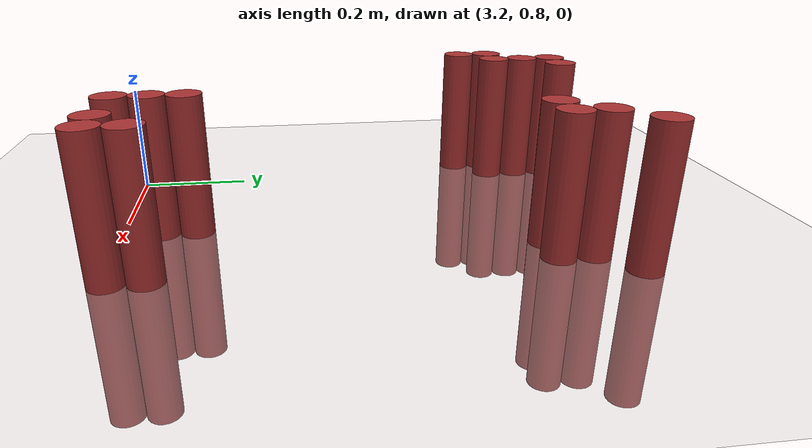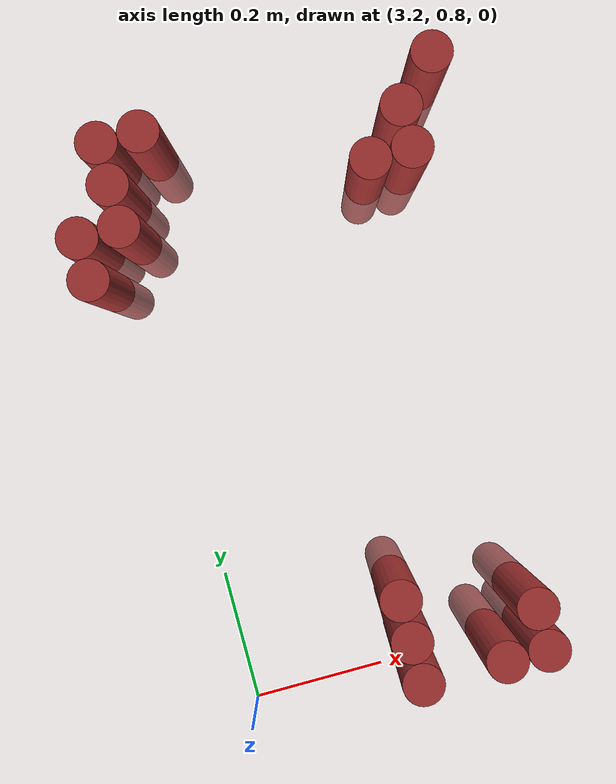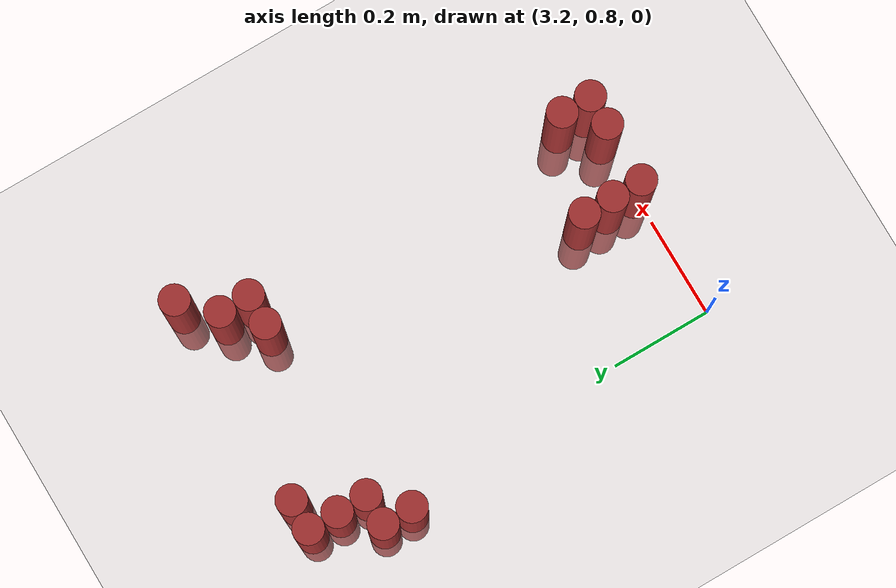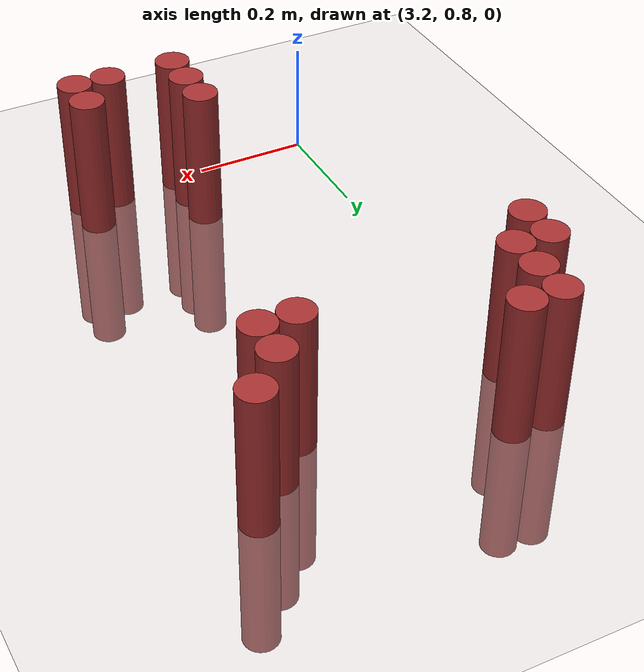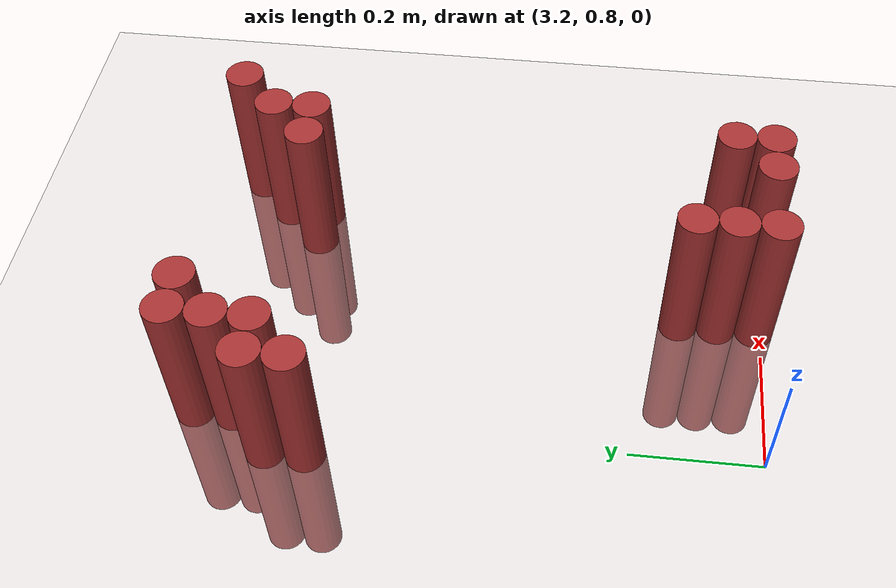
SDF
<sdf version="1.6">
 <world name="default">
  <model name="ground_plane">
   <static>1</static>
   <link name="link">
    <collision name="collision">
     <geometry><plane><normal>0 0 1</normal><size>100 100</size></plane></geometry>
     <surface><friction><ode><mu>100</mu><mu2>50</mu2></ode></friction></surface>
    </collision>
    <visual name="visual">
     <cast_shadows>0</cast_shadows>
     <geometry><plane><normal>0 0 1</normal><size>100 100</size></plane></geometry>
     <material>
      <script><uri>file://media/materials/scripts/gazebo.material</uri><name>Gazebo/Grey</name></script>
     </material>
    </visual>
   </link>
  </model>
  <model name="unit_cylinder_140">
   <static>1</static>
   <pose>3.210000 1.650000 0.000000 0.000000 0.000000 0.000000</pose>
   <link name="link">
    <inertial>
     <mass>1</mass>
     <inertia><ixx>0.145833</ixx><ixy>0</ixy><ixz>0</ixz><iyy>0.145833</iyy><iyz>0</iyz><izz>0.125</izz></inertia>
    </inertial>
    <collision name="collision">
     <geometry><cylinder><radius>0.030000</radius><length>0.5</length></cylinder></geometry>
    </collision>
    <visual name="visual">
     <geometry><cylinder><radius>0.030000</radius><length>0.5</length></cylinder></geometry>
     <material>
      <ambient>0.648000 0.192000 0.192000 1</ambient>
      <diffuse>0.648000 0.192000 0.192000 1</diffuse>
     </material>
     <material>
      <script><name>Gazebo/Grey</name><uri>file://media/materials/scripts/gazebo.material</uri></script>
     </material>
    </visual>
   </link>
  </model>
  <model name="unit_cylinder_141">
   <static>1</static>
   <pose>3.270000 1.650000 0.000000 0.000000 0.000000 0.000000</pose>
   <link name="link">
    <inertial>
     <mass>1</mass>
     <inertia><ixx>0.145833</ixx><ixy>0</ixy><ixz>0</ixz><iyy>0.145833</iyy><iyz>0</iyz><izz>0.125</izz></inertia>
    </inertial>
    <collision name="collision">
     <geometry><cylinder><radius>0.030000</radius><length>0.5</length></cylinder></geometry>
    </collision>
    <visual name="visual">
     <geometry><cylinder><radius>0.030000</radius><length>0.5</length></cylinder></geometry>
     <material>
      <ambient>0.648000 0.192000 0.192000 1</ambient>
      <diffuse>0.648000 0.192000 0.192000 1</diffuse>
     </material>
     <material>
      <script><name>Gazebo/Grey</name><uri>file://media/materials/scripts/gazebo.material</uri></script>
     </material>
    </visual>
   </link>
  </model>
  <model name="unit_cylinder_142">
   <static>1</static>
   <pose>3.690000 1.650000 0.000000 0.000000 0.000000 0.000000</pose>
   <link name="link">
    <inertial>
     <mass>1</mass>
     <inertia><ixx>0.145833</ixx><ixy>0</ixy><ixz>0</ixz><iyy>0.145833</iyy><iyz>0</iyz><izz>0.125</izz></inertia>
    </inertial>
    <collision name="collision">
     <geometry><cylinder><radius>0.030000</radius><length>0.5</length></cylinder></geometry>
    </collision>
    <visual name="visual">
     <geometry><cylinder><radius>0.030000</radius><length>0.5</length></cylinder></geometry>
     <material>
      <ambient>0.648000 0.192000 0.192000 1</ambient>
      <diffuse>0.648000 0.192000 0.192000 1</diffuse>
     </material>
     <material>
      <script><name>Gazebo/Grey</name><uri>file://media/materials/scripts/gazebo.material</uri></script>
     </material>
    </visual>
   </link>
  </model>
  <model name="unit_cylinder_144">
   <static>1</static>
   <pose>3.210000 1.590000 0.000000 0.000000 0.000000 0.000000</pose>
   <link name="link">
    <inertial>
     <mass>1</mass>
     <inertia><ixx>0.145833</ixx><ixy>0</ixy><ixz>0</ixz><iyy>0.145833</iyy><iyz>0</iyz><izz>0.125</izz></inertia>
    </inertial>
    <collision name="collision">
     <geometry><cylinder><radius>0.030000</radius><length>0.5</length></cylinder></geometry>
    </collision>
    <visual name="visual">
     <geometry><cylinder><radius>0.030000</radius><length>0.5</length></cylinder></geometry>
     <material>
      <ambient>0.648000 0.192000 0.192000 1</ambient>
      <diffuse>0.648000 0.192000 0.192000 1</diffuse>
     </material>
     <material>
      <script><name>Gazebo/Grey</name><uri>file://media/materials/scripts/gazebo.material</uri></script>
     </material>
    </visual>
   </link>
  </model>
  <model name="unit_cylinder_145">
   <static>1</static>
   <pose>3.630000 1.590000 0.000000 0.000000 0.000000 0.000000</pose>
   <link name="link">
    <inertial>
     <mass>1</mass>
     <inertia><ixx>0.145833</ixx><ixy>0</ixy><ixz>0</ixz><iyy>0.145833</iyy><iyz>0</iyz><izz>0.125</izz></inertia>
    </inertial>
    <collision name="collision">
     <geometry><cylinder><radius>0.030000</radius><length>0.5</length></cylinder></geometry>
    </collision>
    <visual name="visual">
     <geometry><cylinder><radius>0.030000</radius><length>0.5</length></cylinder></geometry>
     <material>
      <ambient>0.648000 0.192000 0.192000 1</ambient>
      <diffuse>0.648000 0.192000 0.192000 1</diffuse>
     </material>
     <material>
      <script><name>Gazebo/Grey</name><uri>file://media/materials/scripts/gazebo.material</uri></script>
     </material>
    </visual>
   </link>
  </model>
  <model name="unit_cylinder_147">
   <static>1</static>
   <pose>3.150000 1.530000 0.000000 0.000000 0.000000 0.000000</pose>
   <link name="link">
    <inertial>
     <mass>1</mass>
     <inertia><ixx>0.145833</ixx><ixy>0</ixy><ixz>0</ixz><iyy>0.145833</iyy><iyz>0</iyz><izz>0.125</izz></inertia>
    </inertial>
    <collision name="collision">
     <geometry><cylinder><radius>0.030000</radius><length>0.5</length></cylinder></geometry>
    </collision>
    <visual name="visual">
     <geometry><cylinder><radius>0.030000</radius><length>0.5</length></cylinder></geometry>
     <material>
      <ambient>0.648000 0.192000 0.192000 1</ambient>
      <diffuse>0.648000 0.192000 0.192000 1</diffuse>
     </material>
     <material>
      <script><name>Gazebo/Grey</name><uri>file://media/materials/scripts/gazebo.material</uri></script>
     </material>
    </visual>
   </link>
  </model>
  <model name="unit_cylinder_148">
   <static>1</static>
   <pose>3.210000 1.530000 0.000000 0.000000 0.000000 0.000000</pose>
   <link name="link">
    <inertial>
     <mass>1</mass>
     <inertia><ixx>0.145833</ixx><ixy>0</ixy><ixz>0</ixz><iyy>0.145833</iyy><iyz>0</iyz><izz>0.125</izz></inertia>
    </inertial>
    <collision name="collision">
     <geometry><cylinder><radius>0.030000</radius><length>0.5</length></cylinder></geometry>
    </collision>
    <visual name="visual">
     <geometry><cylinder><radius>0.030000</radius><length>0.5</length></cylinder></geometry>
     <material>
      <ambient>0.648000 0.192000 0.192000 1</ambient>
      <diffuse>0.648000 0.192000 0.192000 1</diffuse>
     </material>
     <material>
      <script><name>Gazebo/Grey</name><uri>file://media/materials/scripts/gazebo.material</uri></script>
     </material>
    </visual>
   </link>
  </model>
  <model name="unit_cylinder_149">
   <static>1</static>
   <pose>3.570000 1.530000 0.000000 0.000000 0.000000 0.000000</pose>
   <link name="link">
    <inertial>
     <mass>1</mass>
     <inertia><ixx>0.145833</ixx><ixy>0</ixy><ixz>0</ixz><iyy>0.145833</iyy><iyz>0</iyz><izz>0.125</izz></inertia>
    </inertial>
    <collision name="collision">
     <geometry><cylinder><radius>0.030000</radius><length>0.5</length></cylinder></geometry>
    </collision>
    <visual name="visual">
     <geometry><cylinder><radius>0.030000</radius><length>0.5</length></cylinder></geometry>
     <material>
      <ambient>0.648000 0.192000 0.192000 1</ambient>
      <diffuse>0.648000 0.192000 0.192000 1</diffuse>
     </material>
     <material>
      <script><name>Gazebo/Grey</name><uri>file://media/materials/scripts/gazebo.material</uri></script>
     </material>
    </visual>
   </link>
  </model>
  <model name="unit_cylinder_150">
   <static>1</static>
   <pose>3.630000 1.530000 0.000000 0.000000 0.000000 0.000000</pose>
   <link name="link">
    <inertial>
     <mass>1</mass>
     <inertia><ixx>0.145833</ixx><ixy>0</ixy><ixz>0</ixz><iyy>0.145833</iyy><iyz>0</iyz><izz>0.125</izz></inertia>
    </inertial>
    <collision name="collision">
     <geometry><cylinder><radius>0.030000</radius><length>0.5</length></cylinder></geometry>
    </collision>
    <visual name="visual">
     <geometry><cylinder><radius>0.030000</radius><length>0.5</length></cylinder></geometry>
     <material>
      <ambient>0.648000 0.192000 0.192000 1</ambient>
      <diffuse>0.648000 0.192000 0.192000 1</diffuse>
     </material>
     <material>
      <script><name>Gazebo/Grey</name><uri>file://media/materials/scripts/gazebo.material</uri></script>
     </material>
    </visual>
   </link>
  </model>
  <model name="unit_cylinder_153">
   <static>1</static>
   <pose>3.150000 1.470000 0.000000 0.000000 0.000000 0.000000</pose>
   <link name="link">
    <inertial>
     <mass>1</mass>
     <inertia><ixx>0.145833</ixx><ixy>0</ixy><ixz>0</ixz><iyy>0.145833</iyy><iyz>0</iyz><izz>0.125</izz></inertia>
    </inertial>
    <collision name="collision">
     <geometry><cylinder><radius>0.030000</radius><length>0.5</length></cylinder></geometry>
    </collision>
    <visual name="visual">
     <geometry><cylinder><radius>0.030000</radius><length>0.5</length></cylinder></geometry>
     <material>
      <ambient>0.648000 0.192000 0.192000 1</ambient>
      <diffuse>0.648000 0.192000 0.192000 1</diffuse>
     </material>
     <material>
      <script><name>Gazebo/Grey</name><uri>file://media/materials/scripts/gazebo.material</uri></script>
     </material>
    </visual>
   </link>
  </model>
  <model name="unit_cylinder_175">
   <static>1</static>
   <pose>3.450000 0.930000 0.000000 0.000000 0.000000 0.000000</pose>
   <link name="link">
    <inertial>
     <mass>1</mass>
     <inertia><ixx>0.145833</ixx><ixy>0</ixy><ixz>0</ixz><iyy>0.145833</iyy><iyz>0</iyz><izz>0.125</izz></inertia>
    </inertial>
    <collision name="collision">
     <geometry><cylinder><radius>0.030000</radius><length>0.5</length></cylinder></geometry>
    </collision>
    <visual name="visual">
     <geometry><cylinder><radius>0.030000</radius><length>0.5</length></cylinder></geometry>
     <material>
      <ambient>0.648000 0.192000 0.192000 1</ambient>
      <diffuse>0.648000 0.192000 0.192000 1</diffuse>
     </material>
     <material>
      <script><name>Gazebo/Grey</name><uri>file://media/materials/scripts/gazebo.material</uri></script>
     </material>
    </visual>
   </link>
  </model>
  <model name="unit_cylinder_176">
   <static>1</static>
   <pose>3.450000 0.870000 0.000000 0.000000 0.000000 0.000000</pose>
   <link name="link">
    <inertial>
     <mass>1</mass>
     <inertia><ixx>0.145833</ixx><ixy>0</ixy><ixz>0</ixz><iyy>0.145833</iyy><iyz>0</iyz><izz>0.125</izz></inertia>
    </inertial>
    <collision name="collision">
     <geometry><cylinder><radius>0.030000</radius><length>0.5</length></cylinder></geometry>
    </collision>
    <visual name="visual">
     <geometry><cylinder><radius>0.030000</radius><length>0.5</length></cylinder></geometry>
     <material>
      <ambient>0.648000 0.192000 0.192000 1</ambient>
      <diffuse>0.648000 0.192000 0.192000 1</diffuse>
     </material>
     <material>
      <script><name>Gazebo/Grey</name><uri>file://media/materials/scripts/gazebo.material</uri></script>
     </material>
    </visual>
   </link>
  </model>
  <model name="unit_cylinder_177">
   <static>1</static>
   <pose>3.630000 0.870000 0.000000 0.000000 0.000000 0.000000</pose>
   <link name="link">
    <inertial>
     <mass>1</mass>
     <inertia><ixx>0.145833</ixx><ixy>0</ixy><ixz>0</ixz><iyy>0.145833</iyy><iyz>0</iyz><izz>0.125</izz></inertia>
    </inertial>
    <collision name="collision">
     <geometry><cylinder><radius>0.030000</radius><length>0.5</length></cylinder></geometry>
    </collision>
    <visual name="visual">
     <geometry><cylinder><radius>0.030000</radius><length>0.5</length></cylinder></geometry>
     <material>
      <ambient>0.648000 0.192000 0.192000 1</ambient>
      <diffuse>0.648000 0.192000 0.192000 1</diffuse>
     </material>
     <material>
      <script><name>Gazebo/Grey</name><uri>file://media/materials/scripts/gazebo.material</uri></script>
     </material>
    </visual>
   </link>
  </model>
  <model name="unit_cylinder_179">
   <static>1</static>
   <pose>3.450000 0.810000 0.000000 0.000000 0.000000 0.000000</pose>
   <link name="link">
    <inertial>
     <mass>1</mass>
     <inertia><ixx>0.145833</ixx><ixy>0</ixy><ixz>0</ixz><iyy>0.145833</iyy><iyz>0</iyz><izz>0.125</izz></inertia>
    </inertial>
    <collision name="collision">
     <geometry><cylinder><radius>0.030000</radius><length>0.5</length></cylinder></geometry>
    </collision>
    <visual name="visual">
     <geometry><cylinder><radius>0.030000</radius><length>0.5</length></cylinder></geometry>
     <material>
      <ambient>0.648000 0.192000 0.192000 1</ambient>
      <diffuse>0.648000 0.192000 0.192000 1</diffuse>
     </material>
     <material>
      <script><name>Gazebo/Grey</name><uri>file://media/materials/scripts/gazebo.material</uri></script>
     </material>
    </visual>
   </link>
  </model>
  <model name="unit_cylinder_180">
   <static>1</static>
   <pose>3.570000 0.810000 0.000000 0.000000 0.000000 0.000000</pose>
   <link name="link">
    <inertial>
     <mass>1</mass>
     <inertia><ixx>0.145833</ixx><ixy>0</ixy><ixz>0</ixz><iyy>0.145833</iyy><iyz>0</iyz><izz>0.125</izz></inertia>
    </inertial>
    <collision name="collision">
     <geometry><cylinder><radius>0.030000</radius><length>0.5</length></cylinder></geometry>
    </collision>
    <visual name="visual">
     <geometry><cylinder><radius>0.030000</radius><length>0.5</length></cylinder></geometry>
     <material>
      <ambient>0.648000 0.192000 0.192000 1</ambient>
      <diffuse>0.648000 0.192000 0.192000 1</diffuse>
     </material>
     <material>
      <script><name>Gazebo/Grey</name><uri>file://media/materials/scripts/gazebo.material</uri></script>
     </material>
    </visual>
   </link>
  </model>
  <model name="unit_cylinder_181">
   <static>1</static>
   <pose>3.630000 0.810000 0.000000 0.000000 0.000000 0.000000</pose>
   <link name="link">
    <inertial>
     <mass>1</mass>
     <inertia><ixx>0.145833</ixx><ixy>0</ixy><ixz>0</ixz><iyy>0.145833</iyy><iyz>0</iyz><izz>0.125</izz></inertia>
    </inertial>
    <collision name="collision">
     <geometry><cylinder><radius>0.030000</radius><length>0.5</length></cylinder></geometry>
    </collision>
    <visual name="visual">
     <geometry><cylinder><radius>0.030000</radius><length>0.5</length></cylinder></geometry>
     <material>
      <ambient>0.648000 0.192000 0.192000 1</ambient>
      <diffuse>0.648000 0.192000 0.192000 1</diffuse>
     </material>
     <material>
      <script><name>Gazebo/Grey</name><uri>file://media/materials/scripts/gazebo.material</uri></script>
     </material>
    </visual>
   </link>
  </model>
 </world>
</sdf>
